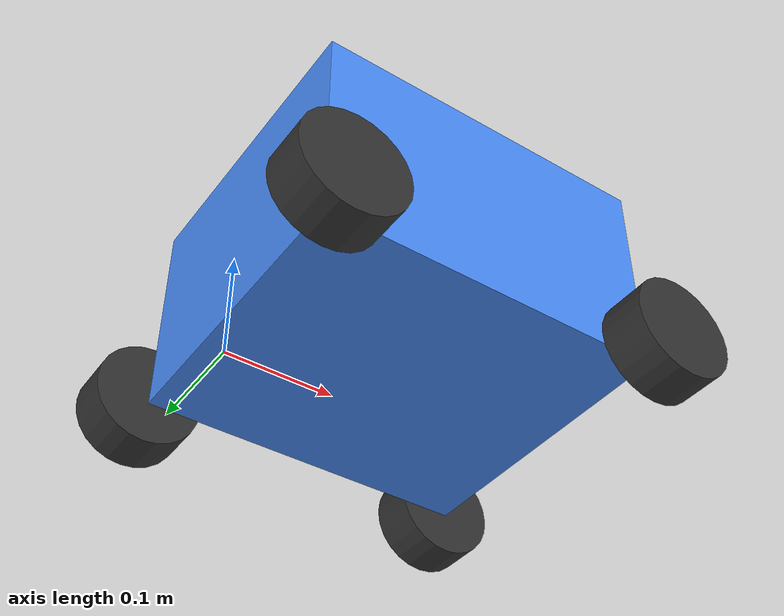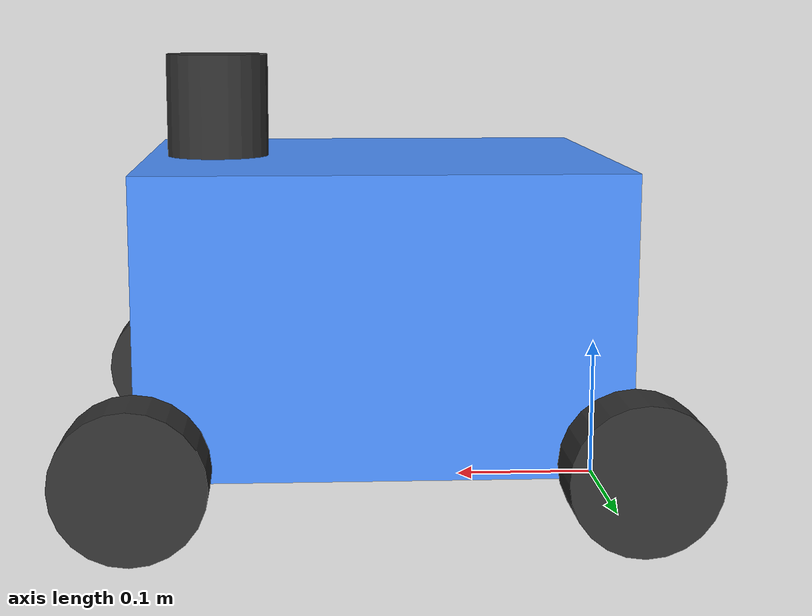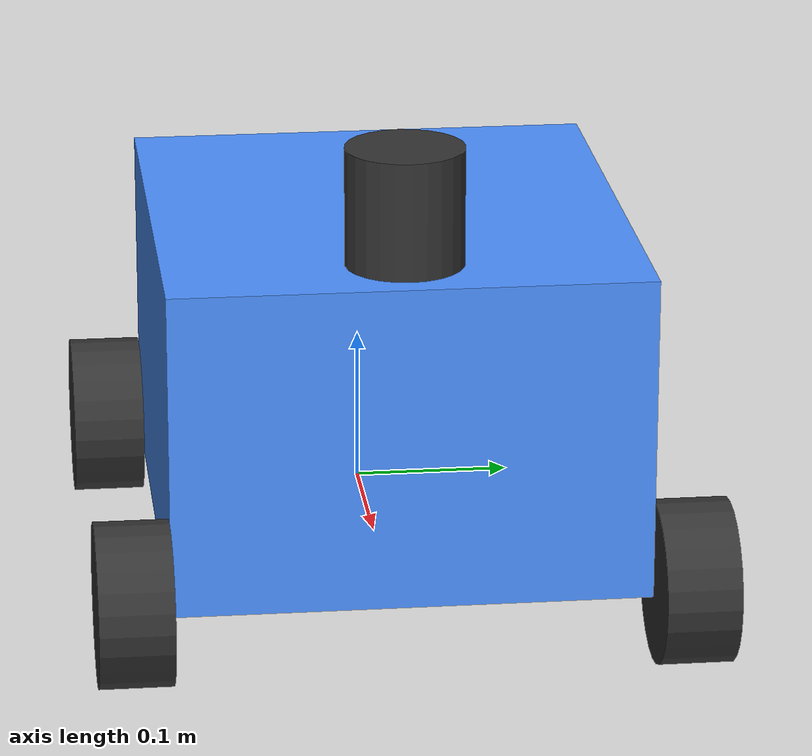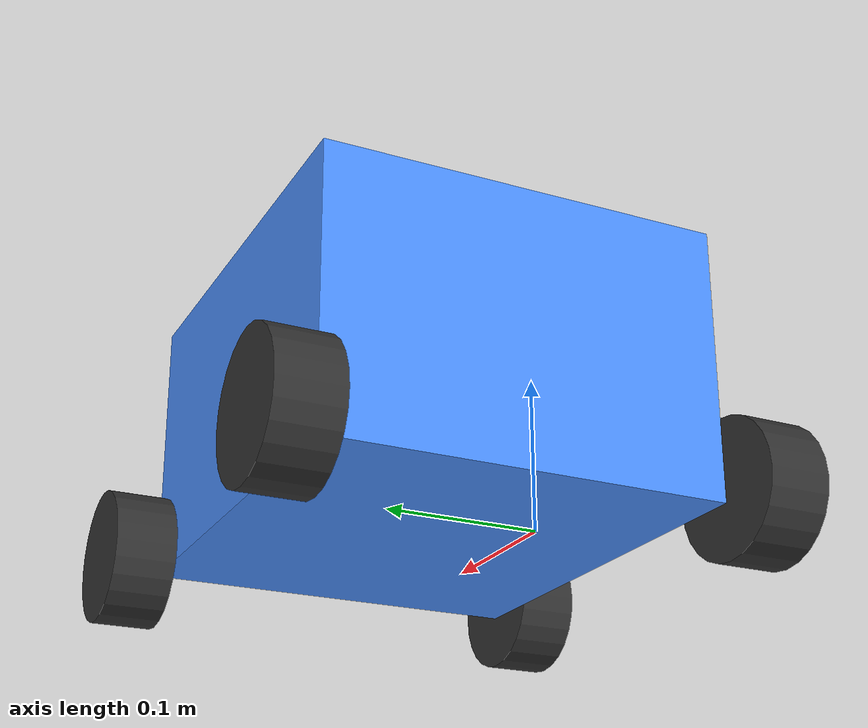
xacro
<?xml version="1.0"?>

<!-- A simple model of the racecar for rviz -->

<robot xmlns:xacro="http://www.ros.org/wiki/xacro" name="racecar">

  <xacro:property name="wheelbase" value="0.325" />
  <!--xacro:property name="width" value="0.2" /-->
  <xacro:property name="width" value="0.29" />
  <!--xacro:property name="height" value="0.1" /-->
  <xacro:property name="height" value="0.2" />
  <xacro:property name="ground_offset" value="0.04" />
  <xacro:property name="wheel_radius" value="0.05" />
  <xacro:property name="wheel_length" value="0.045" />
  <xacro:property name="laser_distance_from_base_link" value="0.275" />
  <!--xacro:property name="laser_height" value="0.05" /-->
  <xacro:property name="laser_height" value="0.072" />
  <!--xacro:property name="laser_radius" value="0.026" /-->
  <xacro:property name="laser_radius" value="0.036" />

  <material name="black">
    <color rgba="0.2 0.2 0.2 1."/>
  </material>

  <material name="blue">
    <color rgba="0.3 0.57 1. 1."/>
  </material>

  <link name="base_link">
    <visual>
      <origin xyz="${wheelbase/2} 0 ${ground_offset+height/2}"/>
      <geometry>
        <box size="${wheelbase} ${width} ${height}"/>
      </geometry>
      <material name="blue"/>
    </visual>
  </link>

  <joint name="base_to_laser_model" type="fixed">
    <parent link="base_link"/>
    <child link="laser_model"/>
    <origin xyz="${laser_distance_from_base_link} 0 ${ground_offset+height+(laser_height/2)}"/>
  </joint>

  <link name="laser_model">
    <visual>
      <geometry>
        <cylinder radius="${laser_radius}" length="${laser_height}"/>
      </geometry>
      <material name="black"/>
    </visual>
  </link>

  <joint name="base_to_back_left_wheel" type="fixed">
    <parent link="base_link"/>
    <child link="back_left_wheel"/>
    <origin xyz="0 ${(wheel_length+width)/2} ${wheel_radius}"/>
  </joint>

  <link name="back_left_wheel">
    <visual>
      <geometry>
        <cylinder radius="${wheel_radius}" length="${wheel_length}"/>
      </geometry>
      <material name="black"/>
      <origin rpy="${pi/2} 0 0"/>
    </visual>
  </link>

  <joint name="base_to_back_right_wheel" type="fixed">
    <parent link="base_link"/>
    <child link="back_right_wheel"/>
    <origin xyz="0 ${-(wheel_length+width)/2} ${wheel_radius}"/>
  </joint>

  <link name="back_right_wheel">
    <visual>
      <geometry>
        <cylinder radius="${wheel_radius}" length="${wheel_length}"/>
      </geometry>
      <material name="black"/>
      <origin rpy="${pi/2} 0 0"/>
    </visual>
  </link>

  <joint name="base_to_front_left_hinge" type="fixed">
    <parent link="base_link"/>
    <child link="front_left_hinge"/>
    <origin xyz="${wheelbase} ${(wheel_length+width)/2} ${wheel_radius}"/>
  </joint>

  <link name="front_left_hinge"/>

  <joint name="front_left_hinge_to_wheel" type="continuous">
    <parent link="front_left_hinge"/>
    <child link="front_left_wheel"/>
  </joint>

  <link name="front_left_wheel">
    <visual>
      <geometry>
        <cylinder radius="${wheel_radius}" length="${wheel_length}"/>
      </geometry>
      <material name="black"/>
      <origin rpy="${pi/2} 0 0"/>
    </visual>
  </link>

  <joint name="base_to_front_right_hinge" type="fixed">
    <parent link="base_link"/>
    <child link="front_right_hinge"/>
    <origin xyz="${wheelbase} ${-(wheel_length+width)/2} ${wheel_radius}"/>
  </joint>

  <link name="front_right_hinge"/>

  <joint name="front_right_hinge_to_wheel" type="continuous">
    <parent link="front_right_hinge"/>
    <child link="front_right_wheel"/>
  </joint>

  <link name="front_right_wheel">
    <visual>
      <geometry>
        <cylinder radius="${wheel_radius}" length="${wheel_length}"/>
      </geometry>
      <material name="black"/>
      <origin rpy="${pi/2} 0 0"/>
    </visual>
  </link>

</robot>
